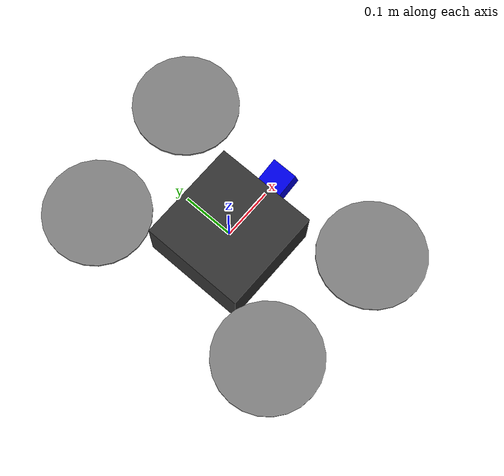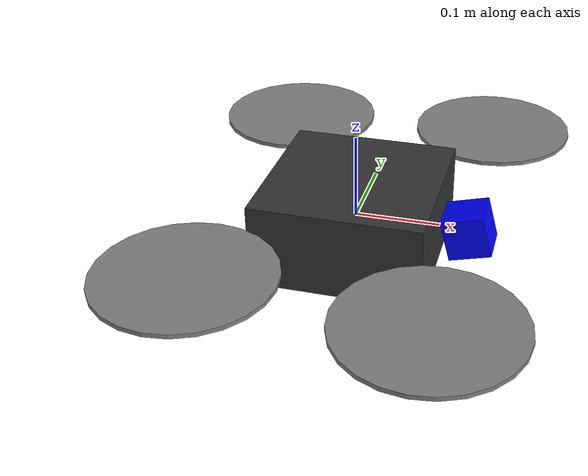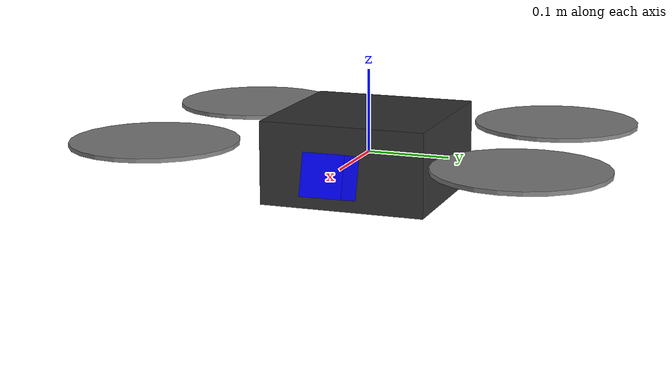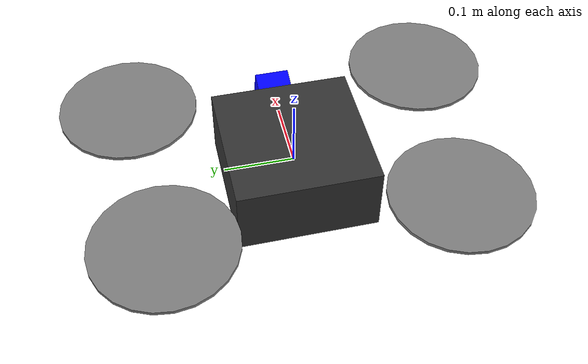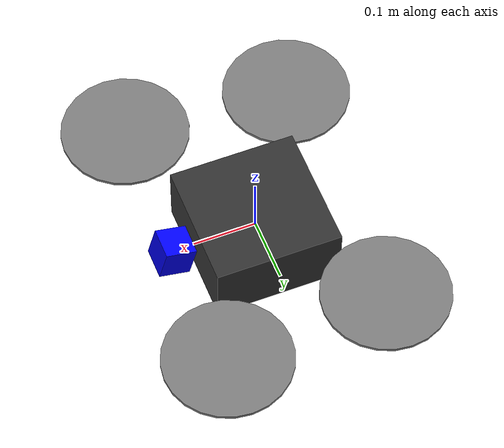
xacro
<?xml version="1.0"?>
<robot xmlns:xacro="http://www.ros.org/wiki/xacro" name="iris">

  <link name="base_link">
    <visual>
      <origin xyz="0 0 0" rpy="0 0 0"/>
      <geometry>
        <box size="0.2 0.2 0.1"/>
      </geometry>
      <material name="dark_grey">
        <color rgba="0.2 0.2 0.2 1"/>
      </material>
    </visual>
  </link>

  <link name="imu_link"/>
  <joint name="imu_joint" type="fixed">
    <parent link="base_link"/>
    <child link="imu_link"/>
    <origin xyz="0 0 0" rpy="0 0 0"/>
  </joint>

  <xacro:macro name="rotor" params="number origin_xyz">
    <link name="rotor_${number}">
      <visual>
        <geometry>
          <cylinder radius="0.1" length="0.005"/>
        </geometry>
        <material name="prop_color">
          <color rgba="0.5 0.5 0.5 1"/>
        </material>
      </visual>
    </link>
    <joint name="rotor_${number}_joint" type="continuous">
      <parent link="base_link"/>
      <child link="rotor_${number}"/>
      <origin xyz="${origin_xyz}" rpy="0 0 0"/>
      <axis xyz="0 0 1"/>
    </joint>
  </xacro:macro>

  <xacro:rotor number="0" origin_xyz="0.13 -0.22 0.023"/>
  <xacro:rotor number="1" origin_xyz="-0.13 0.2 0.023"/>
  <xacro:rotor number="2" origin_xyz="0.13 0.22 0.023"/>
  <xacro:rotor number="3" origin_xyz="-0.13 -0.2 0.023"/>

  <link name="camera_link">
    <visual>
      <geometry>
        <box size="0.05 0.05 0.05"/>
      </geometry>
      <material name="blue">
        <color rgba="0 0 1 1"/>
      </material>
    </visual>
  </link>

  <joint name="camera_joint" type="fixed">
    <parent link="base_link"/>
    <child link="camera_link"/>
    <origin xyz="0.135 0 0" rpy="0 -0.26 0"/>
  </joint>

<link name="camera_optical_link"/>

<joint name="camera_optical_joint" type="fixed">
  <parent link="camera_link"/>
  <child link="camera_optical_link"/>
  <origin xyz="0 0 0" rpy="0 0.26 0"/>
</joint>

</robot>
